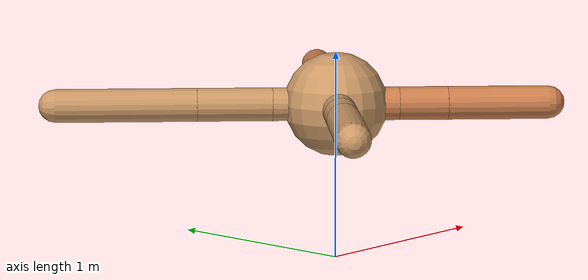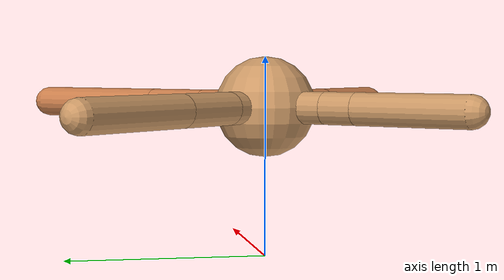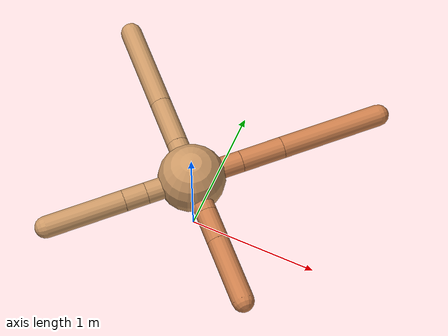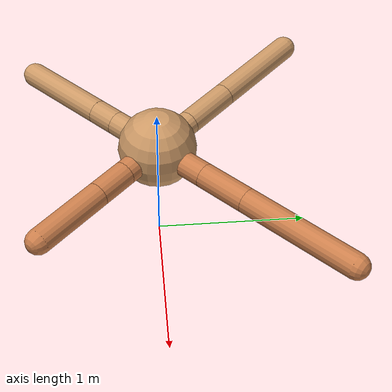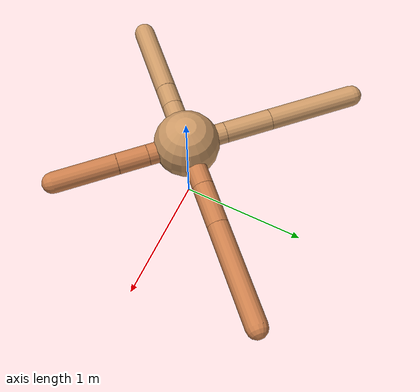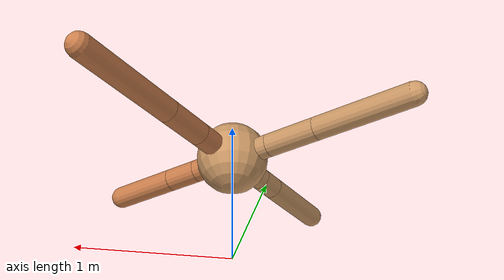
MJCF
<mujoco model="ant">
  <compiler angle="degree" coordinate="local" inertiafromgeom="true" />
  <option integrator="RK4" timestep="0.01" />
  <custom>
    <numeric data="0.0 0.0 0.55 1.0 0.0 0.0 0.0 0.0 1.0 0.0 -1.0 0.0 -1.0 0.0 1.0" name="init_qpos" />
  </custom>
  <default>
    <joint armature="1" damping="1" limited="true" />
    <geom conaffinity="0" condim="3" density="5.0" friction="1.5 0.1 0.1" margin="0.01" rgba="0.8 0.6 0.4 1" />
  </default>
  <worldbody>
    <body name="torso" pos="0 0 0.75">
      <geom name="torso_geom" pos="0 0 0" size="0.25" type="sphere" />

      <body name="front_left_leg" pos="0 0 0">
        <geom fromto="0.0 0.0 0.0 0.2710734551822024 0.2710734551822024 0.0" name="aux_1_geom" size="0.08" type="capsule" rgba=".8 .5 .3 1" />
        <body name="aux_1" pos="0.2710734551822024 0.2710734551822024 0.0">
          <joint axis="0 0 1" name="hip_1" pos="0.0 0.0 0.0" range="-40 40" type="hinge" />
          <geom fromto="0.0 0.0 0.0 0.22879206845208133 0.22879206845208133 0.0" name="left_leg_geom" size="0.08" type="capsule" rgba=".8 .5 .3 1" />
          <body pos="0.22879206845208133 0.22879206845208133 0.0" name="front_left_foot">
            <joint axis="-1 1 0" name="ankle_1" pos="0.0 0.0 0.0" range="30 100" type="hinge" />
            <geom fromto="0.0 0.0 0.0 0.5479667662710778 0.5479667662710778 0.0" name="left_ankle_geom" size="0.08" type="capsule" rgba=".8 .5 .3 1" />
          </body>
        </body>
      </body>
      <body name="front_right_leg" pos="0 0 0">
        <geom fromto="0.0 0.0 0.0 -0.21537482117846296 0.21537482117846296 0.0" name="aux_2_geom" size="0.08" type="capsule" />
        <body name="aux_2" pos="-0.21537482117846296 0.21537482117846296 0.0">
          <joint axis="0 0 1" name="hip_2" pos="0.0 0.0 0.0" range="-40 40" type="hinge" />
          <geom fromto="0.0 0.0 0.0 -0.25535474045768297 0.25535474045768297 0.0" name="right_leg_geom" size="0.08" type="capsule" />
          <body pos="-0.25535474045768297 0.25535474045768297 0.0" name="front_right_foot">
            <joint axis="1 1 0" name="ankle_2" pos="0.0 0.0 0.0" range="-100 -30" type="hinge" />
            <geom fromto="0.0 0.0 0.0 -0.47926289160916924 0.47926289160916924 0.0" name="right_ankle_geom" size="0.08" type="capsule" />
          </body>
        </body>
      </body>
      <body name="left_back_leg" pos="0 0 0">
        <geom fromto="0.0 0.0 0.0 -0.24839146799855133 -0.24839146799855133 0.0" name="aux_3_geom" size="0.08" type="capsule" />
        <body name="aux_3" pos="-0.24839146799855133 -0.24839146799855133 0.0">
          <joint axis="0 0 1" name="hip_3" pos="0.0 0.0 0.0" range="-40 40" type="hinge" />
          <geom fromto="0.0 0.0 0.0 -0.12049595068326822 -0.12049595068326822 0.0" name="back_leg_geom" size="0.08" type="capsule" />
          <body pos="-0.12049595068326822 -0.12049595068326822 0.0" name="left_back_foot">
            <joint axis="-1 1 0" name="ankle_3" pos="0.0 0.0 0.0" range="-100 -30" type="hinge" />
            <geom fromto="0.0 0.0 0.0 -0.4168524990909068 -0.4168524990909068 0.0" name="third_ankle_geom" size="0.08" type="capsule" />
          </body>
        </body>
      </body>
      <body name="right_back_leg" pos="0 0 0">
        <geom fromto="0.0 0.0 0.0 0.21455294821938262 -0.21455294821938262 0.0" name="aux_4_geom" size="0.08" type="capsule" rgba=".8 .5 .3 1" />
        <body name="aux_4" pos="0.21455294821938262 -0.21455294821938262 0.0">
          <joint axis="0 0 1" name="hip_4" pos="0.0 0.0 0.0" range="-40 40" type="hinge" />
          <geom fromto="0.0 0.0 0.0 0.16618423660666606 -0.16618423660666606 0.0" name="rightback_leg_geom" size="0.08" type="capsule" rgba=".8 .5 .3 1" />
          <body pos="0.16618423660666606 -0.16618423660666606 0.0" name="right_back_foot">
            <joint axis="1 1 0" name="ankle_4" pos="0.0 0.0 0.0" range="30 100" type="hinge" />
            <geom fromto="0.0 0.0 0.0 0.34435919756230915 -0.34435919756230915 0.0" name="fourth_ankle_geom" size="0.08" type="capsule" rgba=".8 .5 .3 1" />
          </body>
        </body>
      </body>
    </body>
  </worldbody>
  <actuator>
    <motor ctrllimited="true" ctrlrange="-1.0 1.0" joint="hip_4" gear="150" />
    <motor ctrllimited="true" ctrlrange="-1.0 1.0" joint="ankle_4" gear="150" />
    <motor ctrllimited="true" ctrlrange="-1.0 1.0" joint="hip_1" gear="150" />
    <motor ctrllimited="true" ctrlrange="-1.0 1.0" joint="ankle_1" gear="150" />
    <motor ctrllimited="true" ctrlrange="-1.0 1.0" joint="hip_2" gear="150" />
    <motor ctrllimited="true" ctrlrange="-1.0 1.0" joint="ankle_2" gear="150" />
    <motor ctrllimited="true" ctrlrange="-1.0 1.0" joint="hip_3" gear="150" />
    <motor ctrllimited="true" ctrlrange="-1.0 1.0" joint="ankle_3" gear="150" />
  </actuator>
</mujoco>
